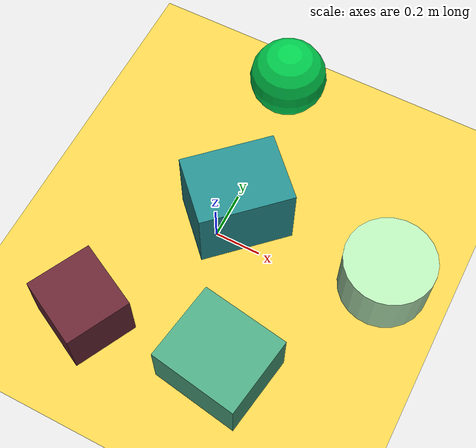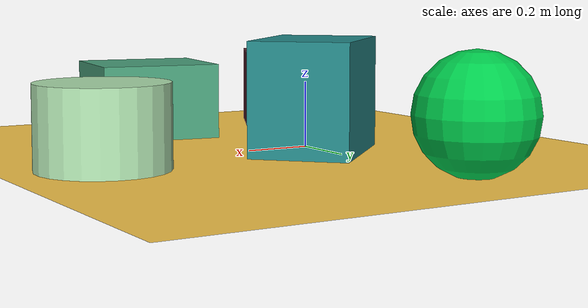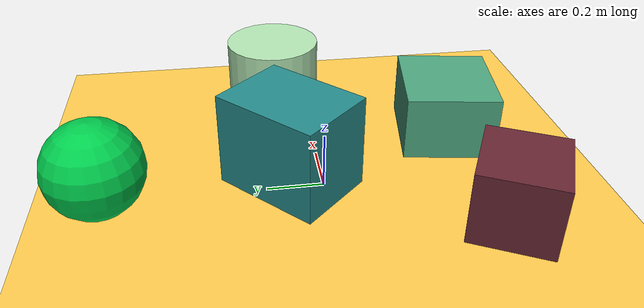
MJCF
<mujoco>
   <asset>
<texture type="skybox" builtin="gradient" rgb1="0.1 0.2 0.2" rgb2="0.2 0.6 0.8" width="500" height="500"/>
<texture name="checker_0" builtin="checker" rgb1="0.5 0.2 0.3" rgb2="0.3 0.1 0.1" width="500" height="500"/>
<texture name="gradient_1" builtin="gradient" rgb1="0.1 0.4 0.8" rgb2="0.2 0.7 0.3" width="500" height="500"/>
<texture name="gradient_2" builtin="gradient" rgb1="0.0 0.9 0.5" rgb2="0.0 0.7 0.1" width="500" height="500"/>
<texture name="gradient_3" builtin="gradient" rgb1="0.4 1.0 0.2" rgb2="0.2 0.3 0.8" width="500" height="500"/>
<texture name="flat_4" builtin="flat" rgb1="0.7 0.9 0.7" rgb2="0.7 0.9 0.7"  width="500" height="500"/><material name="checker_0_mat" reflectance="0.4758765073077148" texrepeat="8 8" texture="checker_0" texuniform="false" />
<material name="gradient_1_mat" reflectance="0.21918455532043268" texture="gradient_1" texuniform="true"/>
<material name="gradient_2_mat" reflectance="0.40178609554157585" texture="gradient_2" texuniform="true"/>
<material name="gradient_3_mat" reflectance="0.31957002311353255" texture="gradient_3" texuniform="true"/>
<material name="flat_4_mat" reflectance="0.4889710811028204" texture="flat_4" texuniform="true"/>
   </asset>

   <worldbody>
     <geom type="plane" size="1 1 0.1" rgba="1.0 0.8 0.3 1" />
<light pos="0.9418863044275683 -0.42884260667359086 2" dir="0 0 -1" cutoff="90" diffuse="1 1 1" specular="1 1 1"/>
<light pos="-0.8667096430381092 -0.8837301373712039 2" dir="0 0 -1" cutoff="90" diffuse="1 1 1" specular="1 1 1"/>
<geom type="box" pos="-0.29 -0.58 0.13" size="0.14 0.15 0.13" material="checker_0_mat" euler="0 0 63" />
<geom type="box" pos="0.04 0.11 0.17" size="0.2 0.15 0.17" material="gradient_1_mat" euler="0 0 44" />
<geom type="sphere" pos="-0.04 0.76 0.17" size="0.17 0.17 0.17" material="gradient_2_mat" euler="0 0 74" />
<geom type="box" pos="0.29 -0.52 0.12" size="0.17 0.19 0.12" material="gradient_3_mat" euler="0 0 81" />
<geom type="cylinder" pos="0.72 0.11 0.12" size="0.19 0.12 0.12" material="flat_4_mat" euler="0 0 20" /><camera euler="60 0 180" fovy="60" name="camera1" pos="-0.2 -1.5 1"></camera>   </worldbody>
   <visual>
      <headlight diffuse="0.7 0.7 0.7"/>
   </visual>
</mujoco>
